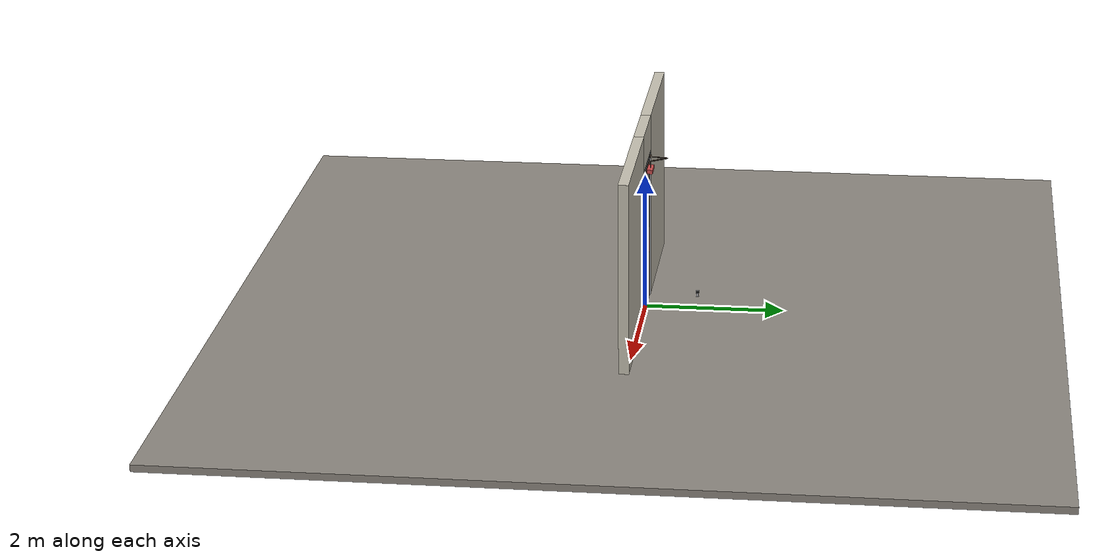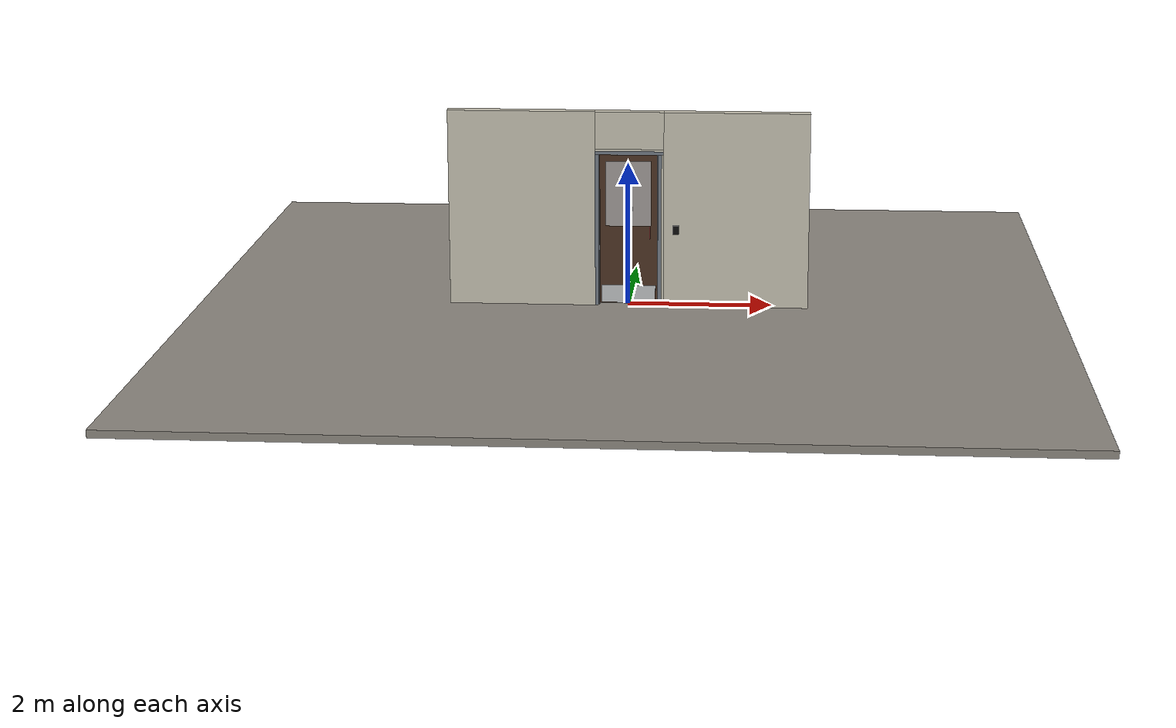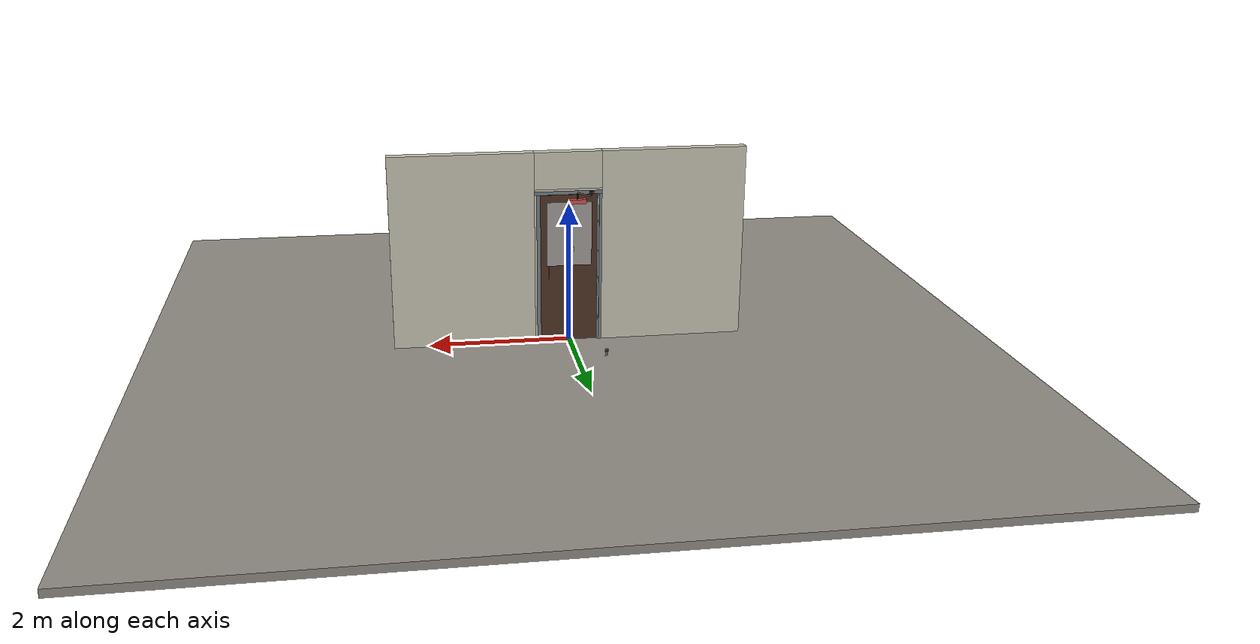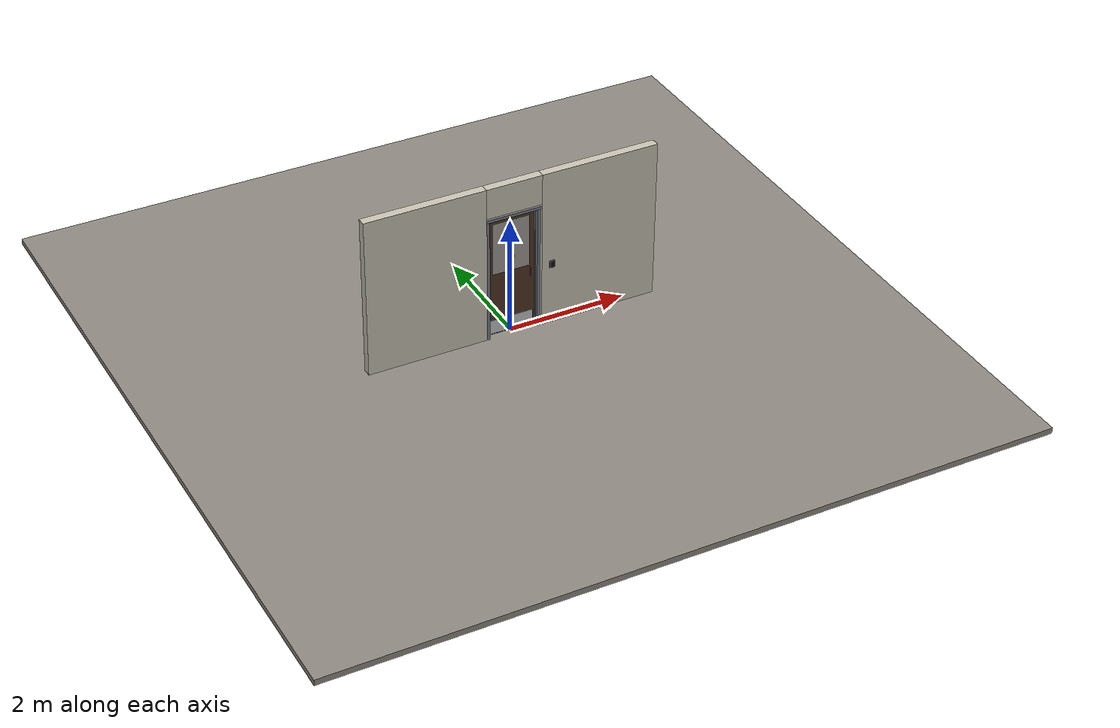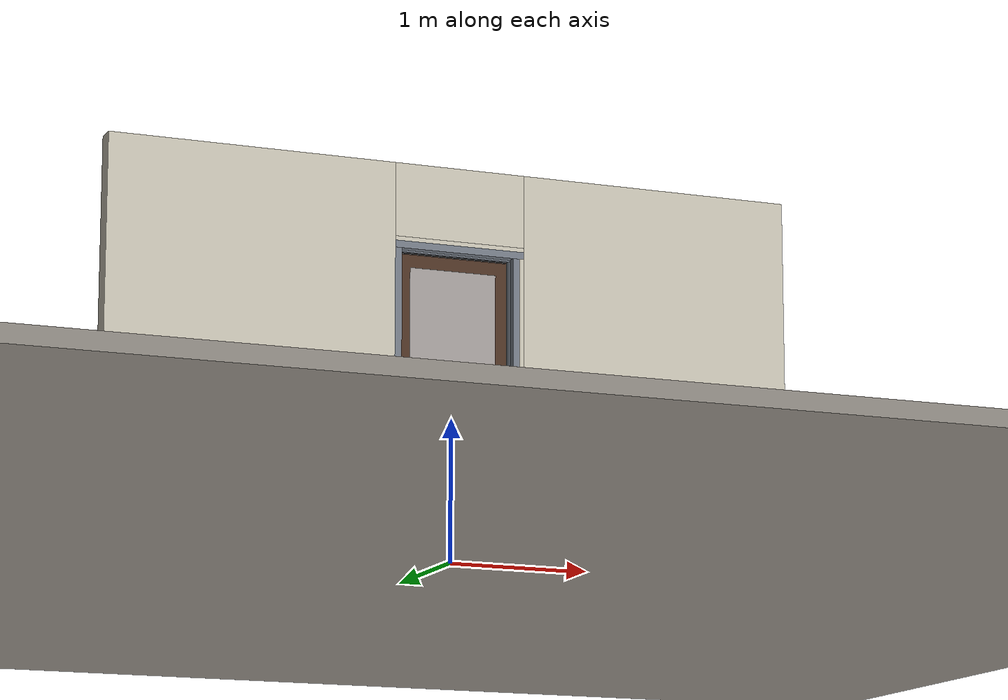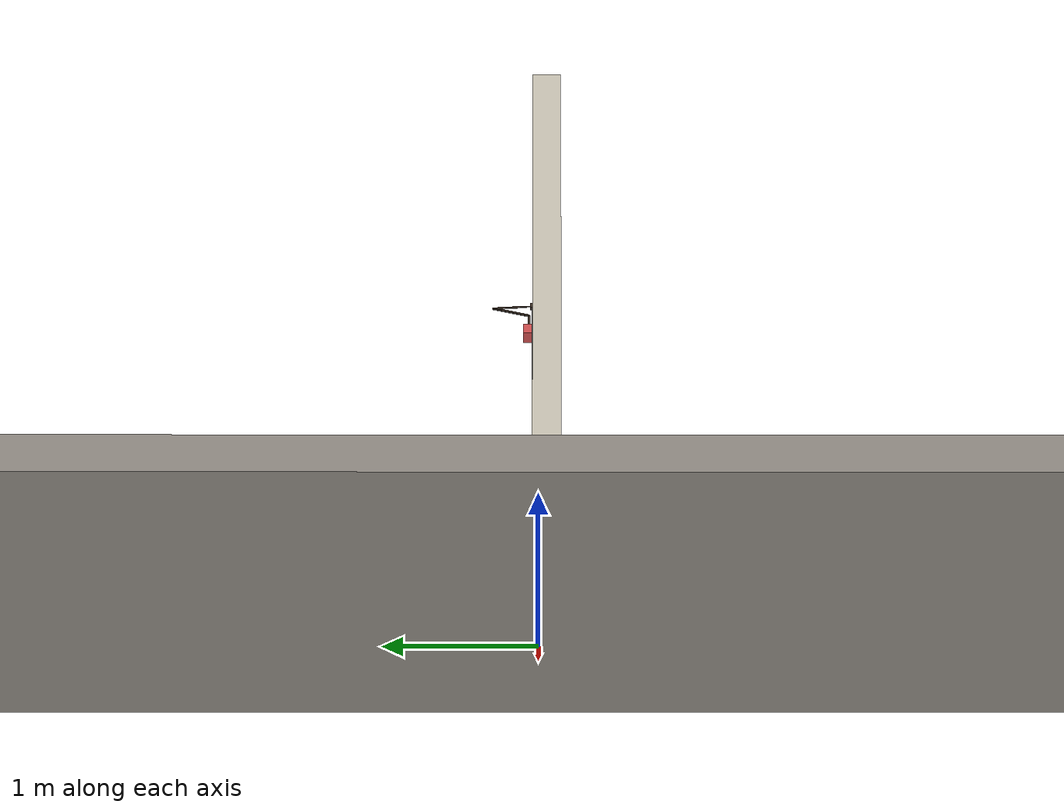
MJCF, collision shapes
<?xml version="1.0" ?>
<mujoco model="db0644_swing_single_full">
  <compiler angle="radian" meshdir="../../hardware" texturedir="../../textures" autolimits="true" inertiafromgeom="false"/>
  <option timestep="0.002" integrator="implicitfast" cone="elliptic" impratio="10" noslip_iterations="3">
    <flag multiccd="enable"/>
  </option>
  <size memory="16M"/>
  <default>
    <geom condim="4" solref="0.005 1" solimp="0.95 0.99 0.001"/>
    <joint solreflimit="0.005 1" solimplimit="0.95 0.99 0.001"/>
    <tendon solreflimit="0.005 1"/>
    <equality solref="0.002 1"/>
  </default>
  <visual>
    <headlight ambient="0.4 0.4 0.4" diffuse="0.7 0.7 0.7" specular="0.2 0.2 0.2"/>
    <quality shadowsize="4096"/>
    <map znear="0.01" zfar="60"/>
  </visual>
  <asset>
    <mesh name="closer_body_b226fdb10b" file="closer_body_b226fdb10b.obj"/>
    <mesh name="pull_1e5d69a91a" file="pull_1e5d69a91a.obj"/>
    <material name="mat_floor" rgba="0.55 0.53 0.5 1" specular="0.2" shininess="0.15" reflectance="0"/>
    <material name="mat_wall" rgba="0.78 0.76 0.7 1" specular="0.2" shininess="0.1" reflectance="0"/>
    <material name="mat_leaf" rgba="0.3 0.2 0.14 1" specular="0.23" shininess="0.39" reflectance="0.02"/>
    <material name="mat_glass" rgba="0.9 0.93 0.95 0.6" specular="0.2" shininess="0.5" reflectance="0.1"/>
    <material name="mat_hinge" rgba="0.65 0.66 0.68 1" specular="0.74" shininess="0.5" reflectance="0.36"/>
    <material name="mat_op_stainless" rgba="0.75 0.76 0.77 1" specular="0.8" shininess="0.65" reflectance="0.4"/>
    <material name="mat_frame" rgba="0.45 0.48 0.52 1" specular="0.32" shininess="0.6" reflectance="0.08"/>
    <material name="mat_seal" rgba="0.1 0.1 0.1 1" specular="0.2" shininess="0.1" reflectance="0"/>
    <material name="mat_closer" rgba="0.22 0.17 0.13 1" specular="0.8" shininess="0.6" reflectance="0.4"/>
    <material name="mat_kick" rgba="0.75 0.76 0.77 1" specular="0.8" shininess="0.65" reflectance="0.4"/>
    <material name="mat_sign" rgba="0.75 0.76 0.77 1" specular="0.8" shininess="0.65" reflectance="0.4"/>
    <material name="mat_wallreader" rgba="0.05 0.05 0.05 1" specular="0.38" shininess="0.3" reflectance="0.12"/>
    <material name="mat_bumper_stop" rgba="0.08 0.08 0.08 1" specular="0.2" shininess="0.1" reflectance="0"/>
    <material name="mat_stop_base" rgba="0.9 0.9 0.92 1" specular="0.8" shininess="0.9" reflectance="0.4"/>
    <texture name="skybox" type="skybox" builtin="gradient" rgb1="0.6 0.7 0.85" rgb2="0.9 0.92 0.95" width="256" height="256"/>
  </asset>
  <worldbody>
    <light name="sun" pos="1.5 -2.5 4" dir="-0.3 0.5 -0.8" directional="true" diffuse="0.8 0.8 0.8" specular="0.3 0.3 0.3" castshadow="true"/>
    <light name="fill" pos="-1.5 2.5 3" dir="0.3 -0.5 -0.7" directional="true" diffuse="0.35 0.35 0.4" castshadow="false"/>
    <camera name="robot_view" pos="0 -2.681312 1.812087" xyaxes="1 0 0 0 0.26963 0.962964" fovy="52"/>
    <camera name="far_view" pos="0 2.594313 1.812087" xyaxes="-1 0 0 0 -0.26963 0.962964" fovy="52"/>
    <camera name="iso" pos="2.004737 -2.259262 2.234138" xyaxes="0.741536 0.670913 0 -0.242917 0.268487 0.932151" fovy="46"/>
    <camera name="detail_handle" pos="0.4805 -0.882 1.32" xyaxes="0.97561 0.219512 0 -0.070934 0.315262 0.94635" fovy="38"/>
    <geom name="floor" type="box" size="6 6 0.05" pos="0 0 -0.05" material="mat_floor" group="0" contype="1" conaffinity="1" friction="0.8 0.005 0.0001" density="2400"/>
    <geom name="wall_left" type="box" size="1.01975 0.0725 1.3735" pos="-1.48025 -0.0435 1.3735" material="mat_wall" group="0" contype="1" conaffinity="1" friction="0.6 0.005 0.0001" density="800"/>
    <geom name="wall_right" type="box" size="1.00475 0.0725 1.3735" pos="1.49525 -0.0435 1.3735" material="mat_wall" group="0" contype="1" conaffinity="1" friction="0.6 0.005 0.0001" density="800"/>
    <geom name="wall_header" type="box" size="0.4755 0.0725 0.26" pos="0.015 -0.0435 2.487" material="mat_wall" group="0" contype="1" conaffinity="1" friction="0.6 0.005 0.0001" density="800"/>
    <geom name="jamb_hinge" type="box" size="0.025 0.0725 1.0735" pos="-0.4355 -0.0435 1.0735" material="mat_frame" group="0" contype="1" conaffinity="1" friction="0.6 0.005 0.0001" density="300"/>
    <geom name="jamb_strike" type="box" size="0.025 0.0725 1.0735" pos="0.4355 -0.0435 1.0735" material="mat_frame" group="0" contype="1" conaffinity="1" friction="0.6 0.005 0.0001" density="300"/>
    <geom name="stud_strike" type="box" size="0.015 0.0725 1.0735" pos="0.4755 -0.0435 1.0735" material="mat_wall" group="0" contype="1" conaffinity="1" friction="0.6 0.005 0.0001" density="500"/>
    <geom name="jamb_head" type="box" size="0.4755 0.0725 0.025" pos="0.015 -0.0435 2.172" material="mat_frame" group="0" contype="1" conaffinity="1" friction="0.6 0.005 0.0001" density="300"/>
    <geom name="head_stud" type="box" size="0.4755 0.0725 0.015" pos="0.015 -0.0435 2.212" material="mat_wall" group="0" contype="1" conaffinity="1" friction="0.6 0.005 0.0001" density="500"/>
    <geom name="stop_hinge" type="box" size="0.0055 0.016 1.0735" pos="-0.405 -0.0385 1.0735" material="mat_frame" group="0" contype="1" conaffinity="1" friction="0.6 0.005 0.0001" density="300"/>
    <geom name="stop_strike" type="box" size="0.0055 0.016 1.0735" pos="0.405 -0.0385 1.0735" material="mat_frame" group="0" contype="1" conaffinity="1" friction="0.6 0.005 0.0001" density="300"/>
    <geom name="stop_head" type="box" size="0.4105 0.016 0.0055" pos="0 -0.0385 2.1415" material="mat_frame" group="0" contype="1" conaffinity="1" friction="0.6 0.005 0.0001" density="300"/>
    <geom name="seal_hinge" type="box" size="0.004 0.002 1.0735" pos="-0.4075 -0.024 1.0735" material="mat_seal" group="1" contype="0" conaffinity="0" density="1100"/>
    <geom name="seal_strike" type="box" size="0.004 0.002 1.0735" pos="0.4075 -0.024 1.0735" material="mat_seal" group="1" contype="0" conaffinity="0" density="1100"/>
    <geom name="seal_head" type="box" size="0.3905 0.002 0.008" pos="0 -0.024 2.135" material="mat_seal" group="1" contype="0" conaffinity="0" density="1100"/>
    <geom name="closer_bracket" type="box" size="0.03 0.012 0.014" pos="-0.3105 0.041 2.177" material="mat_closer" group="1" contype="0" conaffinity="0" density="2700"/>
    <geom name="wall_reader" type="box" size="0.04 0.015 0.06" pos="0.6605 -0.131 1.1" material="mat_wallreader" group="0" contype="1" conaffinity="1" friction="0.6 0.005 0.0001" density="1000"/>
    <geom name="door_stop_base" type="cylinder" size="0.022 0.003" pos="-0.4235 0.72005 0.003" material="mat_stop_base" group="0" contype="1" conaffinity="1" friction="0.6 0.005 0.0001" density="7850"/>
    <geom name="door_stop_post" type="cylinder" size="0.012 0.0245" pos="-0.4235 0.72005 0.0305" material="mat_stop_base" group="0" contype="1" conaffinity="1" friction="0.6 0.005 0.0001" density="7850"/>
    <geom name="door_stop_bumper" type="cylinder" size="0.022 0.02" pos="-0.4235 0.72005 0.075" material="mat_bumper_stop" group="0" contype="1" conaffinity="1" friction="0.6 0.005 0.0001" density="1100"/>
    <site name="approach_point" pos="0 -1.5 0" quat="1 0 0 0" size="0.05" rgba="0.2 0.9 0.2 0.5" group="4"/>
    <site name="goal_point" pos="0 1.5 0" quat="1 0 0 0" size="0.05" rgba="0.2 0.9 0.2 0.5" group="4"/>
    <site name="door_plane_center" pos="0 0 1.0735" quat="1 0 0 0" size="0.02" rgba="0.2 0.9 0.2 0.5" group="4"/>
    <body name="leaf" pos="-0.4105 0 0">
      <inertial pos="0.363794 0.012644 1.209445" mass="43.395495" quat="-0.480066 0.503051 0.507713 0.508629" diaginertia="2.368937527 21.233375632 23.54058736"/>
      <joint name="leaf_hinge" type="hinge" axis="0 0 1" pos="0.003 0.029 0" limited="true" range="0 1.570796" solreflimit="0.02 1" damping="10.168374" frictionloss="1.393359" stiffness="13.057072" springref="-1.488848" armature="0.02"/>
      <geom name="leaf_slab" type="box" size="0.4065 0.022 1.067" pos="0.4095 0 1.076" material="mat_leaf" group="0" contype="1" conaffinity="1" friction="0.4 0.005 0.0001" density="1"/>
      <geom name="leaf_glass_0" type="box" size="0.3165 0.0228 0.45881" pos="0.4095 0 1.57749" material="mat_glass" group="1" contype="0" conaffinity="0" density="1"/>
      <geom name="hinge_continuous" type="cylinder" size="0.0136 1.057" pos="0.003 0.029 1.076" material="mat_hinge" group="1" contype="0" conaffinity="0" density="2700"/>
      <geom name="leaf_pull_n" type="mesh" mesh="pull_1e5d69a91a" pos="0.711 -0.022 1.04" quat="0.707107 0.707107 0 0" material="mat_op_stainless" group="1" contype="0" conaffinity="0" density="3000"/>
      <geom name="leaf_pull_col_n" type="capsule" size="0.0095 0.08" pos="0.711 -0.082 1.04" material="mat_op_stainless" group="3" contype="1" conaffinity="1" rgba="0.8 0.3 0.3 0.25" friction="0.7 0.01 0.0001" density="3000"/>
      <geom name="leaf_pull_p" type="mesh" mesh="pull_1e5d69a91a" pos="0.711 0.022 1.04" quat="-0.707107 0.707107 0 0" material="mat_op_stainless" group="1" contype="0" conaffinity="0" density="3000"/>
      <geom name="leaf_pull_col_p" type="capsule" size="0.0095 0.08" pos="0.711 0.082 1.04" material="mat_op_stainless" group="3" contype="1" conaffinity="1" rgba="0.8 0.3 0.3 0.25" friction="0.7 0.01 0.0001" density="3000"/>
      <geom name="closer_body" type="mesh" mesh="closer_body_b226fdb10b" pos="0.3 0.022 2.054" quat="-0.707107 0.707107 0 0" material="mat_closer" group="1" contype="0" conaffinity="0" density="2000"/>
      <geom name="closer_body_col" type="box" size="0.12 0.04 0.03" pos="0.3 0.062 2.054" material="mat_closer" group="3" contype="1" conaffinity="1" rgba="0.8 0.3 0.3 0.25" friction="0.6 0.005 0.0001" density="2000"/>
      <geom name="closer_pinion_shaft" type="cylinder" size="0.008 0.0615" pos="0.3 0.064 2.1155" material="mat_closer" group="1" contype="0" conaffinity="0" density="2700"/>
      <geom name="kick_plate_n" type="box" size="0.3765 0.0008 0.125" pos="0.4095 -0.0228 0.144" material="mat_kick" group="2" contype="0" conaffinity="0" density="7900"/>
      <geom name="sign_push" type="box" size="0.06 0.001 0.03" pos="0.4095 -0.023 1.359" material="mat_sign" group="2" contype="0" conaffinity="0" density="7900"/>
      <geom name="sign_pull" type="box" size="0.06 0.001 0.03" pos="0.4095 0.023 1.359" material="mat_sign" group="2" contype="0" conaffinity="0" density="7900"/>
      <site name="leaf_pull_grip_n" pos="0.711 -0.082 1.04" quat="1 0 0 0" size="0.012" rgba="0.2 0.9 0.2 0.5" group="4"/>
      <site name="leaf_pull_grip_p" pos="0.711 0.082 1.04" quat="1 0 0 0" size="0.012" rgba="0.2 0.9 0.2 0.5" group="4"/>
      <site name="leaf_edge_mid" pos="0.816 0 1.067" quat="1 0 0 0" size="0.02" rgba="0.2 0.9 0.2 0.5" group="4"/>
      <body name="closer_arm_main" pos="0.3 0.064 2.177" quat="0.472212 0 0 0.881485">
        <inertial pos="0.14 0 0" mass="0.12096" quat="1 0 0 0" diaginertia="0.000003588 0.00079128 0.000792852"/>
        <joint name="closer_pinion" type="hinge" axis="0 0 1" limited="false" damping="0.01" armature="0.002"/>
        <geom name="closer_arm_main_geom" type="box" size="0.14 0.008 0.005" pos="0.14 0 0" material="mat_closer" group="1" contype="0" conaffinity="0" density="2700"/>
        <body name="closer_arm_fore" pos="0.28 0 0" quat="-0.371222 0 0 -0.928544">
          <inertial pos="0.128088 0 0" mass="0.076531" quat="1 0 0 0" diaginertia="0.000001771 0.000437665 0.000438201"/>
          <joint name="closer_elbow" type="hinge" axis="0 0 1" limited="false" damping="0.01" armature="0.002"/>
          <geom name="closer_arm_fore_geom" type="box" size="0.1125 0.007 0.004" pos="0.1125 0 0" material="mat_closer" group="1" contype="0" conaffinity="0" density="2700"/>
          <geom name="closer_fore_neck" type="box" size="0.0175 0.003 0.003" pos="0.2425 0 0" material="mat_closer" group="1" contype="0" conaffinity="0" density="2700"/>
          <geom name="closer_fore_pivot" type="cylinder" size="0.005 0.012" pos="0.26 0 0" material="mat_closer" group="1" contype="0" conaffinity="0" density="2700"/>
        </body>
      </body>
    </body>
  </worldbody>
  <equality>
    <connect name="closer_arm_connect" body1="closer_arm_fore" body2="world" anchor="0.26 0 0" active="true"/>
  </equality>
  <contact>
    <exclude body1="closer_arm_main" body2="leaf"/>
    <exclude body1="closer_arm_fore" body2="leaf"/>
    <exclude body1="closer_arm_main" body2="closer_arm_fore"/>
  </contact>
  <sensor>
    <jointpos name="leaf_hinge_pos" joint="leaf_hinge"/>
    <jointvel name="leaf_hinge_vel" joint="leaf_hinge"/>
  </sensor>
</mujoco>
